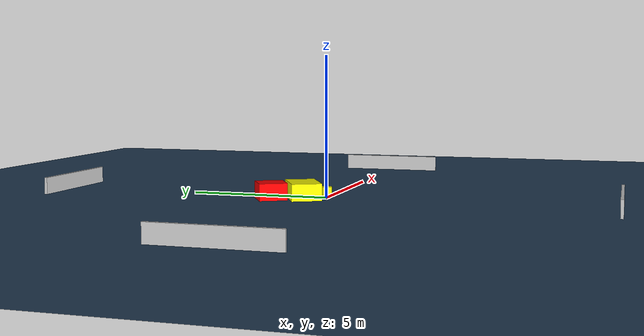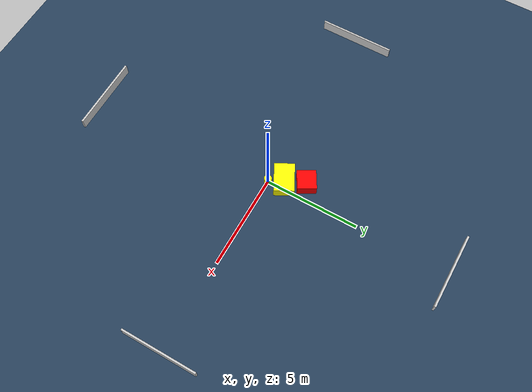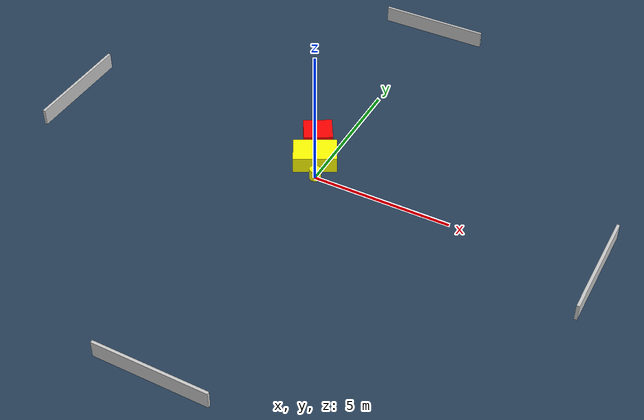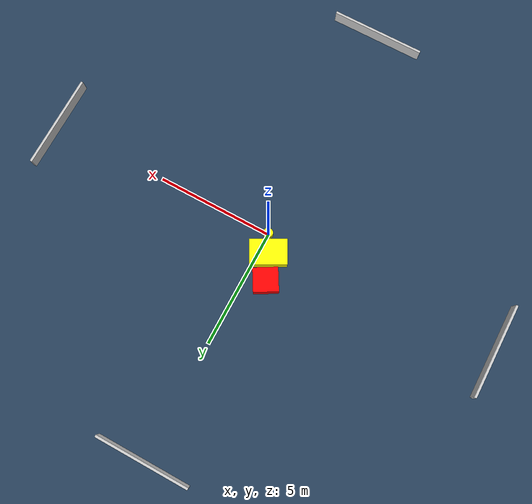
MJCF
<?xml version="1.0" ?>
<mujoco model="generated_environment">
  <option timestep="0.01" integrator="RK4" cone="elliptic"/>
  <default>
    <geom density="1"/>
  </default>
  <asset>
    <texture builtin="gradient" height="3072" name="skybox" rgb1="0.3 0.5 0.7" rgb2="0 0 0" type="skybox" width="512"/>
    <texture builtin="checker" height="300" name="groundplane" rgb1="0.2 0.3 0.4" rgb2="0.1 0.2 0.3" type="2d" width="300"/>
    <material name="groundplane" reflectance="0.2" texrepeat="5 5" texture="groundplane"/>
  </asset>
  <worldbody>
    <light dir="0 0 -1" directional="true" pos="0 0 1.5"/>
    <geom condim="3" friction="0.5 0.005 0.001" material="groundplane" name="floor" pos="0 0 0" size="0 0 0.05" type="plane"/>
    <body name="walls">
      <geom name="wall_1" condim="4" pos="-10.0 0.0 0.3" rgba="0.800000011920929 0.800000011920929 0.800000011920929 1.0" size="0.05 2.0 0.3" type="box"/>
      <geom name="wall_2" condim="4" pos="10.0 0.0 0.3" rgba="0.800000011920929 0.800000011920929 0.800000011920929 1.0" size="0.05 2.0 0.3" type="box"/>
      <geom name="wall_3" condim="4" pos="0.0 -10.0 0.3" rgba="0.800000011920929 0.800000011920929 0.800000011920929 1.0" size="2.0 0.05 0.3" type="box"/>
      <geom name="wall_4" condim="4" pos="0.0 10.0 0.3" rgba="0.800000011920929 0.800000011920929 0.800000011920929 1.0" size="2.0 0.05 0.3" type="box"/>
    </body>
    <body name="robot">
      <joint name="joint_x" type="slide" pos="0 0 0" axis="1 0 0"/>
      <joint name="joint_y" type="slide" pos="0 0 0" axis="0 1 0"/>
      <geom name="robot" type="cylinder" pos="0.0 0.0 0.2" size="0.2 0.2 0.0" mass="5.0" friction="1.0 0.005 0.0001" condim="4" rgba="1.0 1.0 0.0 1.0"/>
    </body>
    <body name="obstacle_1_movable">
      <geom name="obstacle_1_movable" condim="4" pos="-0.38801961815126923 0.7202819994270362 0.3" euler="0 0 27.84335412952222" friction="0.0 0.005 0.001" rgba="1.0 1.0 0.0 1.0" size="0.7630076736488964 0.5266311449847867 0.3" type="box" mass="0.1"/>
      <joint type="free"/>
    </body>
    <body name="obstacle_2_static">
      <geom name="obstacle_2_static" condim="4" pos="-0.8291414763391854 1.762512378250713 0.3" euler="0 0 299.9793193517871" friction="0.0 0.005 0.001" rgba="1.0 0.0 0.0 1.0" size="0.4938571994250449 0.5147773689804056 0.3" type="box"/>
    </body>
  </worldbody>
  <actuator>
    <motor name="actuator_x" joint="joint_x" gear="1" ctrlrange="-1 1"/>
    <motor name="actuator_y" joint="joint_y" gear="1" ctrlrange="-1 1"/>
  </actuator>
</mujoco>
